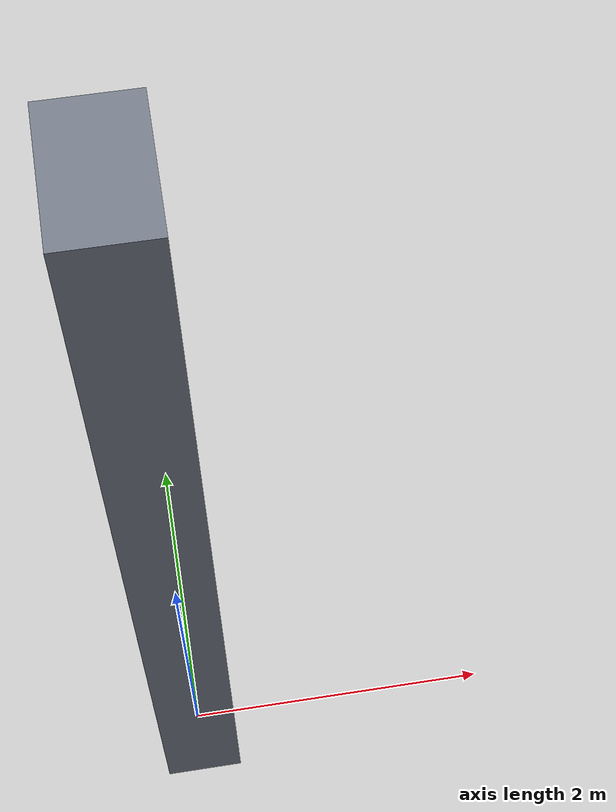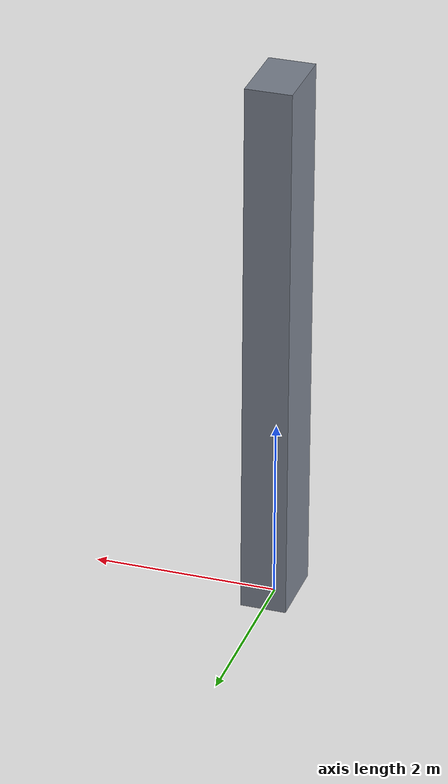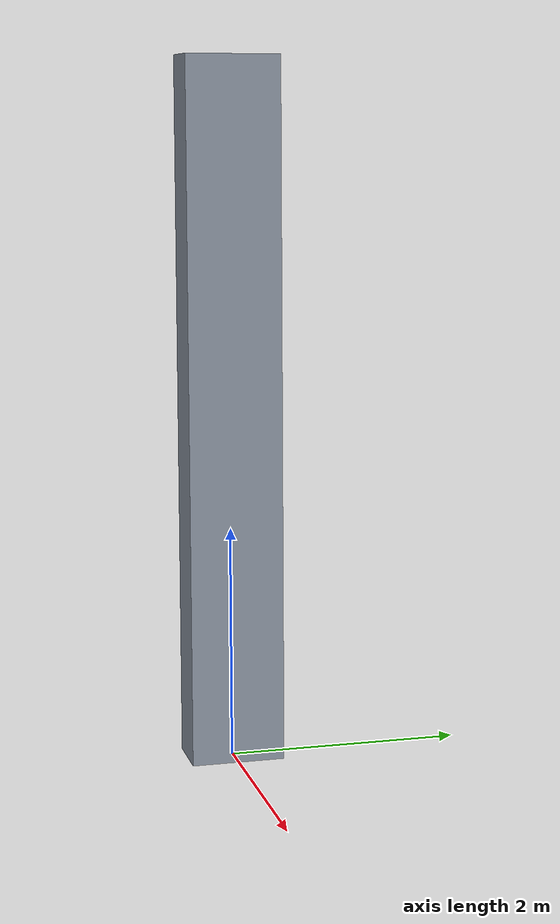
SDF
<?xml version="1.0"?>
<sdf version="1.6">
  <model name="background_wall">
    <static>true</static>
    <link name="wall_link">
      <collision name="wall_collision">
        <pose>0 0 3.0 0 0 0</pose>
        <geometry>
          <box>
            <size>0.50 0.80 6.00</size>
          </box>
        </geometry>
        <surface>
          <contact>
            <collide_without_contact>true</collide_without_contact>
          </contact>
        </surface>
      </collision>
      <visual name="wall_visual">
        <pose>0 0 3.0 0 0 0</pose>
        <geometry>
          <box>
            <size>0.50 0.80 6.00</size>
          </box>
        </geometry>
        <material>
          <ambient>0.34 0.36 0.40 1</ambient>
          <diffuse>0.48 0.51 0.56 1</diffuse>
          <specular>0.03 0.03 0.03 1</specular>
        </material>
      </visual>
    </link>
  </model>
</sdf>
